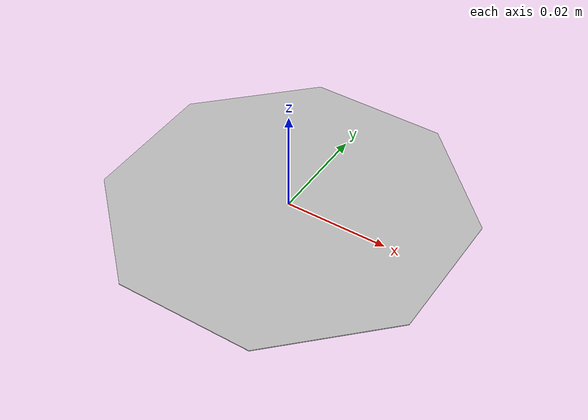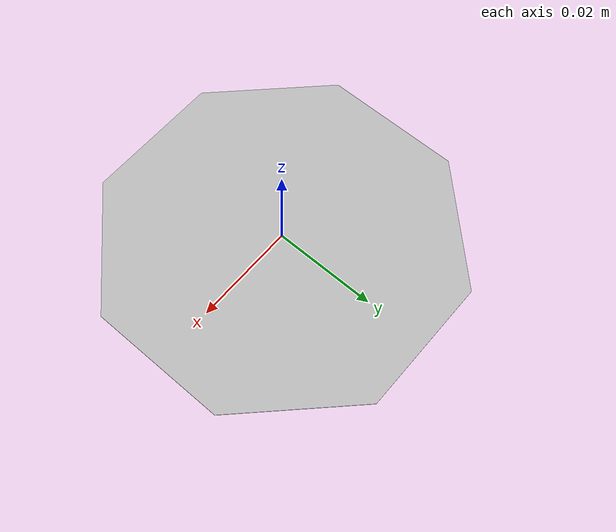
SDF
<?xml version="1.0"?>
<sdf version='1.4'>
    <model name="stop">
        <static>1</static>
        <link name="link_1">
            <visual name='visual'>
                <pose frame=''>0 0 0 0 0 0</pose>
                <geometry>
                    <mesh>
                        <uri>model://stop/meshes/stop.dae</uri>
                    </mesh>
                </geometry>
            </visual>
        </link>
    </model>
</sdf>
